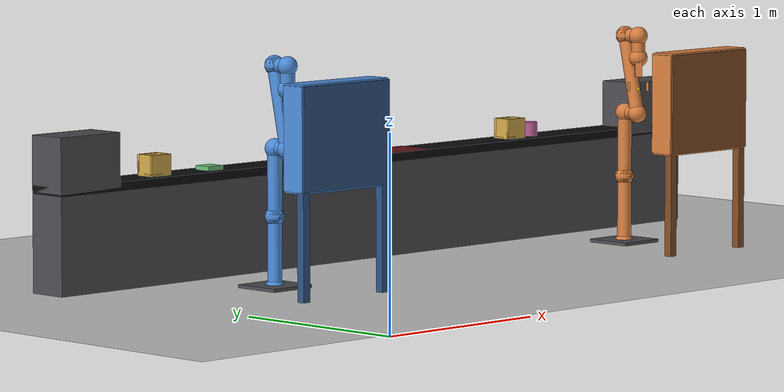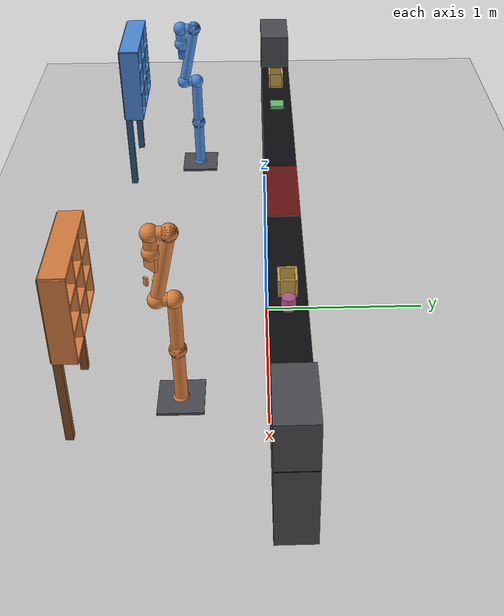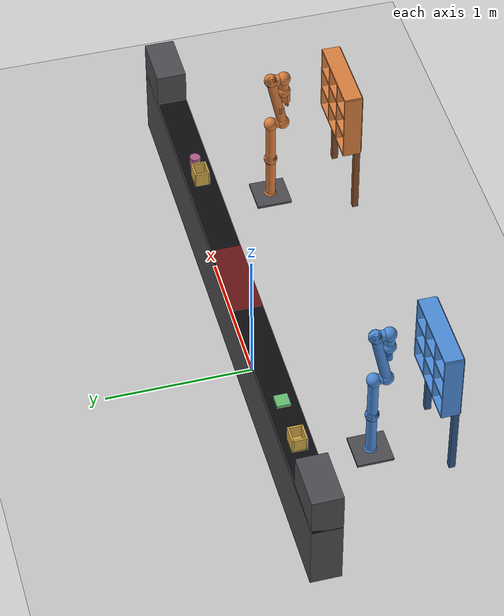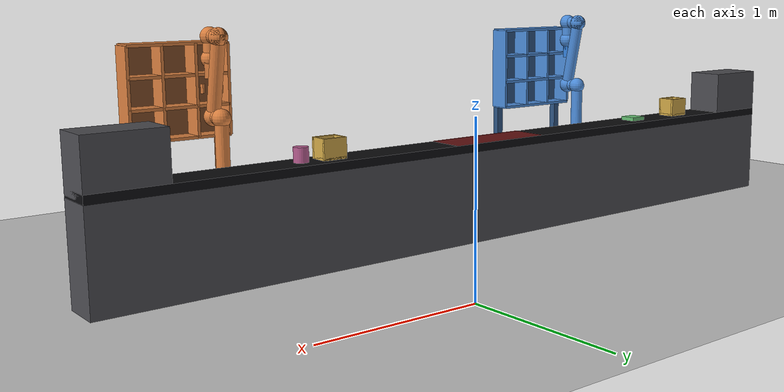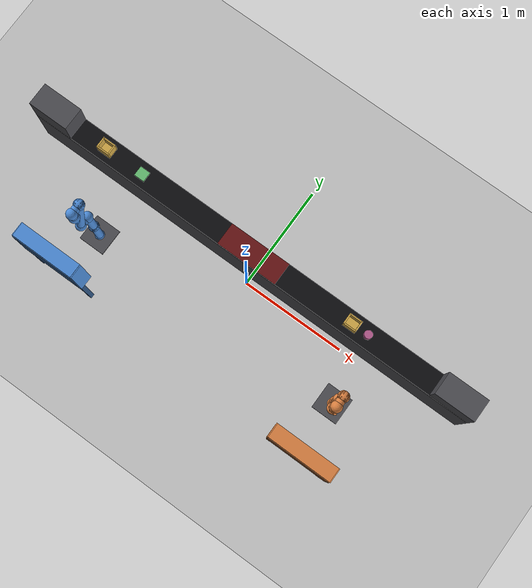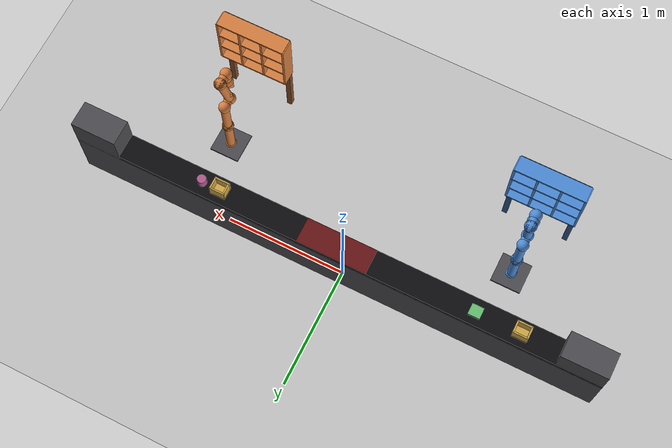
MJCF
<mujoco model="open_order_cell">
  <compiler angle="radian" meshdir="assets/"/>

  <option integrator="implicitfast"/>

  <size nkey="3"/>

  <default>
    <default class="a1_main">
      <default class="a1_panda">
        <material shininess="0.25"/>
        <joint range="-2.8973 2.8973" armature="0.1" damping="1"/>
        <site size="0.001 0.005 0.005" group="4" rgba="0.5 0.5 0.5 0.3"/>
        <general ctrlrange="-2.8973 2.8973" forcerange="-87 87" biastype="affine"/>
        <default class="a1_finger">
          <joint type="slide" range="0 0.04"/>
        </default>
        <default class="a1_panda/visual">
          <geom type="mesh" contype="0" conaffinity="0" group="2"/>
        </default>
        <default class="a1_panda/collision">
          <geom type="mesh" group="3"/>
        </default>
      </default>
    </default>
    <default class="a2_main">
      <default class="a2_panda">
        <material shininess="0.25"/>
        <joint range="-2.8973 2.8973" armature="0.1" damping="1"/>
        <site size="0.001 0.005 0.005" group="4" rgba="0.5 0.5 0.5 0.3"/>
        <general ctrlrange="-2.8973 2.8973" forcerange="-87 87" biastype="affine"/>
        <default class="a2_finger">
          <joint type="slide" range="0 0.04"/>
        </default>
        <default class="a2_panda/visual">
          <geom type="mesh" contype="0" conaffinity="0" group="2"/>
        </default>
        <default class="a2_panda/collision">
          <geom type="mesh" group="3"/>
        </default>
      </default>
    </default>
    <default class="a2g_main">
      <default class="a2g_2f85">
        <mesh scale="0.001 0.001 0.001"/>
        <general biastype="affine"/>
        <default class="a2g_driver">
          <joint solreflimit="0.005" solimplimit="0.95 0.99" range="0 0.8" armature="0.005" damping="0.1"/>
        </default>
        <default class="a2g_follower">
          <joint solreflimit="0.005" solimplimit="0.95 0.99" range="-0.872664 0.872664" armature="0.001"/>
        </default>
        <default class="a2g_spring_link">
          <joint springref="2.62" stiffness="0.05" range="-0.296706 0.8" armature="0.001" damping="0.00125"/>
        </default>
        <default class="a2g_coupler">
          <joint solreflimit="0.005" solimplimit="0.95 0.99" range="-1.57 0" armature="0.001"/>
        </default>
        <default class="a2g_visual">
          <geom type="mesh" contype="0" conaffinity="0" group="2"/>
        </default>
        <default class="a2g_collision">
          <geom type="mesh" group="3"/>
          <default class="a2g_pad_box1">
            <geom size="0.011 0.004 0.009375" type="box" priority="1" friction="0.7" solref="0.004" solimp="0.95 0.99" rgba="0.55 0.55 0.55 1"/>
          </default>
          <default class="a2g_pad_box2">
            <geom size="0.011 0.004 0.009375" type="box" priority="1" friction="0.6" solref="0.004" solimp="0.95 0.99" rgba="0.45 0.45 0.45 1"/>
          </default>
        </default>
      </default>
    </default>
  </default>

  <asset>
    <texture type="2d" colorspace="auto" name="grid" builtin="checker" rgb1="0.85 0.85 0.85" rgb2="0.7 0.7 0.7" width="300" height="300"/>
    <material name="grid" texture="grid" texrepeat="8 8" reflectance="0.1"/>
    <material name="belt" rgba="0.05 0.05 0.06 1"/>
    <material name="steel" rgba="0.3 0.3 0.32 1"/>
    <material name="a1_white" class="a1_panda"/>
    <material name="a1_off_white" class="a1_panda" rgba="0.901961 0.921569 0.929412 1"/>
    <material name="a1_dark_grey" class="a1_panda" rgba="0.25 0.25 0.25 1"/>
    <material name="a1_green" class="a1_panda" rgba="0 1 0 1"/>
    <material name="a1_light_blue" class="a1_panda" rgba="0.039216 0.541176 0.780392 1"/>
    <material name="a2_white" class="a2_panda"/>
    <material name="a2_off_white" class="a2_panda" rgba="0.901961 0.921569 0.929412 1"/>
    <material name="a2_dark_grey" class="a2_panda" rgba="0.25 0.25 0.25 1"/>
    <material name="a2_green" class="a2_panda" rgba="0 1 0 1"/>
    <material name="a2_light_blue" class="a2_panda" rgba="0.039216 0.541176 0.780392 1"/>
    <material name="a2g_metal" rgba="0.58 0.58 0.58 1"/>
    <material name="a2g_silicone" rgba="0.1882 0.1882 0.1882 1"/>
    <material name="a2g_gray" rgba="0.4627 0.4627 0.4627 1"/>
    <material name="a2g_black" rgba="0.149 0.149 0.149 1"/>
    <mesh name="a1_link0_c" file="link0.stl"/>
    <mesh name="a1_link1_c" file="link1.stl"/>
    <mesh name="a1_link2_c" file="link2.stl"/>
    <mesh name="a1_link3_c" file="link3.stl"/>
    <mesh name="a1_link4_c" file="link4.stl"/>
    <mesh name="a1_link5_c0" file="link5_collision_0.obj"/>
    <mesh name="a1_link5_c1" file="link5_collision_1.obj"/>
    <mesh name="a1_link5_c2" file="link5_collision_2.obj"/>
    <mesh name="a1_link6_c" file="link6.stl"/>
    <mesh name="a1_link7_c" file="link7.stl"/>
    <mesh name="a1_link0_0" file="link0_0.obj"/>
    <mesh name="a1_link0_1" file="link0_1.obj"/>
    <mesh name="a1_link0_2" file="link0_2.obj"/>
    <mesh name="a1_link0_3" file="link0_3.obj"/>
    <mesh name="a1_link0_4" file="link0_4.obj"/>
    <mesh name="a1_link0_5" file="link0_5.obj"/>
    <mesh name="a1_link0_7" file="link0_7.obj"/>
    <mesh name="a1_link0_8" file="link0_8.obj"/>
    <mesh name="a1_link0_9" file="link0_9.obj"/>
    <mesh name="a1_link0_10" file="link0_10.obj"/>
    <mesh name="a1_link0_11" file="link0_11.obj"/>
    <mesh name="a1_link1" file="link1.obj"/>
    <mesh name="a1_link2" file="link2.obj"/>
    <mesh name="a1_link3_0" file="link3_0.obj"/>
    <mesh name="a1_link3_1" file="link3_1.obj"/>
    <mesh name="a1_link3_2" file="link3_2.obj"/>
    <mesh name="a1_link3_3" file="link3_3.obj"/>
    <mesh name="a1_link4_0" file="link4_0.obj"/>
    <mesh name="a1_link4_1" file="link4_1.obj"/>
    <mesh name="a1_link4_2" file="link4_2.obj"/>
    <mesh name="a1_link4_3" file="link4_3.obj"/>
    <mesh name="a1_link5_0" file="link5_0.obj"/>
    <mesh name="a1_link5_1" file="link5_1.obj"/>
    <mesh name="a1_link5_2" file="link5_2.obj"/>
    <mesh name="a1_link6_0" file="link6_0.obj"/>
    <mesh name="a1_link6_1" file="link6_1.obj"/>
    <mesh name="a1_link6_2" file="link6_2.obj"/>
    <mesh name="a1_link6_3" file="link6_3.obj"/>
    <mesh name="a1_link6_4" file="link6_4.obj"/>
    <mesh name="a1_link6_5" file="link6_5.obj"/>
    <mesh name="a1_link6_6" file="link6_6.obj"/>
    <mesh name="a1_link6_7" file="link6_7.obj"/>
    <mesh name="a1_link6_8" file="link6_8.obj"/>
    <mesh name="a1_link6_9" file="link6_9.obj"/>
    <mesh name="a1_link6_10" file="link6_10.obj"/>
    <mesh name="a1_link6_11" file="link6_11.obj"/>
    <mesh name="a1_link6_12" file="link6_12.obj"/>
    <mesh name="a1_link6_13" file="link6_13.obj"/>
    <mesh name="a1_link6_14" file="link6_14.obj"/>
    <mesh name="a1_link6_15" file="link6_15.obj"/>
    <mesh name="a1_link6_16" file="link6_16.obj"/>
    <mesh name="a1_link7_0" file="link7_0.obj"/>
    <mesh name="a1_link7_1" file="link7_1.obj"/>
    <mesh name="a1_link7_2" file="link7_2.obj"/>
    <mesh name="a1_link7_3" file="link7_3.obj"/>
    <mesh name="a1_link7_4" file="link7_4.obj"/>
    <mesh name="a1_link7_5" file="link7_5.obj"/>
    <mesh name="a1_link7_6" file="link7_6.obj"/>
    <mesh name="a1_link7_7" file="link7_7.obj"/>
    <mesh name="a2_link0_c" file="link0.stl"/>
    <mesh name="a2_link1_c" file="link1.stl"/>
    <mesh name="a2_link2_c" file="link2.stl"/>
    <mesh name="a2_link3_c" file="link3.stl"/>
    <mesh name="a2_link4_c" file="link4.stl"/>
    <mesh name="a2_link5_c0" file="link5_collision_0.obj"/>
    <mesh name="a2_link5_c1" file="link5_collision_1.obj"/>
    <mesh name="a2_link5_c2" file="link5_collision_2.obj"/>
    <mesh name="a2_link6_c" file="link6.stl"/>
    <mesh name="a2_link7_c" file="link7.stl"/>
    <mesh name="a2_link0_0" file="link0_0.obj"/>
    <mesh name="a2_link0_1" file="link0_1.obj"/>
    <mesh name="a2_link0_2" file="link0_2.obj"/>
    <mesh name="a2_link0_3" file="link0_3.obj"/>
    <mesh name="a2_link0_4" file="link0_4.obj"/>
    <mesh name="a2_link0_5" file="link0_5.obj"/>
    <mesh name="a2_link0_7" file="link0_7.obj"/>
    <mesh name="a2_link0_8" file="link0_8.obj"/>
    <mesh name="a2_link0_9" file="link0_9.obj"/>
    <mesh name="a2_link0_10" file="link0_10.obj"/>
    <mesh name="a2_link0_11" file="link0_11.obj"/>
    <mesh name="a2_link1" file="link1.obj"/>
    <mesh name="a2_link2" file="link2.obj"/>
    <mesh name="a2_link3_0" file="link3_0.obj"/>
    <mesh name="a2_link3_1" file="link3_1.obj"/>
    <mesh name="a2_link3_2" file="link3_2.obj"/>
    <mesh name="a2_link3_3" file="link3_3.obj"/>
    <mesh name="a2_link4_0" file="link4_0.obj"/>
    <mesh name="a2_link4_1" file="link4_1.obj"/>
    <mesh name="a2_link4_2" file="link4_2.obj"/>
    <mesh name="a2_link4_3" file="link4_3.obj"/>
    <mesh name="a2_link5_0" file="link5_0.obj"/>
    <mesh name="a2_link5_1" file="link5_1.obj"/>
    <mesh name="a2_link5_2" file="link5_2.obj"/>
    <mesh name="a2_link6_0" file="link6_0.obj"/>
    <mesh name="a2_link6_1" file="link6_1.obj"/>
    <mesh name="a2_link6_2" file="link6_2.obj"/>
    <mesh name="a2_link6_3" file="link6_3.obj"/>
    <mesh name="a2_link6_4" file="link6_4.obj"/>
    <mesh name="a2_link6_5" file="link6_5.obj"/>
    <mesh name="a2_link6_6" file="link6_6.obj"/>
    <mesh name="a2_link6_7" file="link6_7.obj"/>
    <mesh name="a2_link6_8" file="link6_8.obj"/>
    <mesh name="a2_link6_9" file="link6_9.obj"/>
    <mesh name="a2_link6_10" file="link6_10.obj"/>
    <mesh name="a2_link6_11" file="link6_11.obj"/>
    <mesh name="a2_link6_12" file="link6_12.obj"/>
    <mesh name="a2_link6_13" file="link6_13.obj"/>
    <mesh name="a2_link6_14" file="link6_14.obj"/>
    <mesh name="a2_link6_15" file="link6_15.obj"/>
    <mesh name="a2_link6_16" file="link6_16.obj"/>
    <mesh name="a2_link7_0" file="link7_0.obj"/>
    <mesh name="a2_link7_1" file="link7_1.obj"/>
    <mesh name="a2_link7_2" file="link7_2.obj"/>
    <mesh name="a2_link7_3" file="link7_3.obj"/>
    <mesh name="a2_link7_4" file="link7_4.obj"/>
    <mesh name="a2_link7_5" file="link7_5.obj"/>
    <mesh name="a2_link7_6" file="link7_6.obj"/>
    <mesh name="a2_link7_7" file="link7_7.obj"/>
    <mesh name="a2g_base_mount" class="a2g_2f85" file="base_mount.stl"/>
    <mesh name="a2g_base" class="a2g_2f85" file="base.stl"/>
    <mesh name="a2g_driver" class="a2g_2f85" file="driver.stl"/>
    <mesh name="a2g_coupler" class="a2g_2f85" file="coupler.stl"/>
    <mesh name="a2g_follower" class="a2g_2f85" file="follower.stl"/>
    <mesh name="a2g_pad" class="a2g_2f85" file="pad.stl"/>
    <mesh name="a2g_silicone_pad" class="a2g_2f85" file="silicone_pad.stl"/>
    <mesh name="a2g_spring_link" class="a2g_2f85" file="spring_link.stl"/>
  </asset>

  <worldbody>
    <geom name="floor" size="4 4 0.1" pos="0 0 0.4" type="plane" material="grid"/>
    <geom name="base1" size="0.12 0.12 0.008" pos="-1.2 -0.45 0.408" type="box" material="steel"/>
    <geom name="base2" size="0.12 0.12 0.008" pos="1.2 -0.45 0.408" type="box" material="steel"/>
    <geom name="belt_base" size="2.11 0.1 0.23" pos="0 0.1 0.63" type="box" contype="0" conaffinity="0" material="steel"/>
    <geom name="belt" size="2.11 0.1 0.02" pos="0 0.1 0.88" type="box" material="belt"/>
    <geom name="belt_gap_band" size="0.28 0.1 0.001" pos="0 0.1 0.901" type="box" contype="0" conaffinity="0" rgba="0.8 0.15 0.15 0.5"/>
    <geom name="feeder" size="0.18 0.1 0.13" pos="-1.93 0.1 1" type="box" contype="0" conaffinity="0" material="steel"/>
    <geom name="collector" size="0.18 0.1 0.13" pos="1.93 0.1 1" type="box" contype="0" conaffinity="0" material="steel"/>
    <light name="key" pos="0 -1 2.5" dir="0 0.371391 -0.928477"/>
    <light name="a1_top" pos="-1.2 -0.45 2.4" dir="0 0 -1" mode="trackcom"/>
    <body name="a1_link0" childclass="a1_panda" pos="-1.2 -0.45 0.4" quat="0.707107 0 0 -0.707107">
      <inertial pos="-0.041018 -0.00014 0.049974" quat="0.00630474 0.751245 0.00741774 0.659952" mass="0.629769" diaginertia="0.00430465 0.00387984 0.00313051"/>
      <geom class="a1_panda/visual" group="3" rgba="0.5 0.5 0.5 0" mesh="a1_link0_0"/>
      <geom class="a1_panda/visual" group="3" rgba="0.5 0.5 0.5 0" mesh="a1_link0_1"/>
      <geom class="a1_panda/visual" group="3" rgba="0.5 0.5 0.5 0" mesh="a1_link0_2"/>
      <geom class="a1_panda/visual" group="3" rgba="0.5 0.5 0.5 0" mesh="a1_link0_3"/>
      <geom class="a1_panda/visual" group="3" rgba="0.5 0.5 0.5 0" mesh="a1_link0_4"/>
      <geom class="a1_panda/visual" group="3" rgba="0.5 0.5 0.5 0" mesh="a1_link0_5"/>
      <geom class="a1_panda/visual" group="3" rgba="0.5 0.5 0.5 0" mesh="a1_link0_7"/>
      <geom class="a1_panda/visual" group="3" rgba="0.5 0.5 0.5 0" mesh="a1_link0_8"/>
      <geom class="a1_panda/visual" group="3" rgba="0.5 0.5 0.5 0" mesh="a1_link0_9"/>
      <geom class="a1_panda/visual" group="3" rgba="0.5 0.5 0.5 0" mesh="a1_link0_10"/>
      <geom class="a1_panda/visual" group="3" rgba="0.5 0.5 0.5 0" mesh="a1_link0_11"/>
      <geom class="a1_panda/collision" mesh="a1_link0_c"/>
      <geom name="a1_stk_link0_j" size="0.046" contype="0" conaffinity="0" group="2" rgba="0.3 0.55 0.85 1"/>
      <geom name="a1_stk_link0_link1" size="0.034 0.1665" pos="0 0 0.1665" quat="0 1 0 0" type="capsule" contype="0" conaffinity="0" group="2" rgba="0.3 0.55 0.85 1"/>
      <body name="a1_link1" pos="0 0 0.333">
        <inertial pos="0.003875 0.002081 -0.04762" quat="0.711549 0.00634377 -0.0131124 0.702485" mass="4.97068" diaginertia="0.707137 0.703435 0.00852456"/>
        <joint name="a1_joint1" pos="0 0 0" axis="0 0 1"/>
        <geom class="a1_panda/visual" group="3" rgba="0.5 0.5 0.5 0" mesh="a1_link1"/>
        <geom class="a1_panda/collision" mesh="a1_link1_c"/>
        <geom name="a1_stk_link1_j" size="0.046" contype="0" conaffinity="0" group="2" rgba="0.3 0.55 0.85 1"/>
        <body name="a1_link2" quat="0.707107 -0.707107 0 0">
          <inertial pos="-0.003141 -0.02872 0.003495" quat="-0.168175 0.828366 -0.122878 0.520027" mass="0.646926" diaginertia="0.0310326 0.0283001 0.00273425"/>
          <joint name="a1_joint2" pos="0 0 0" axis="0 0 1" range="-1.7628 1.7628"/>
          <geom class="a1_panda/visual" group="3" rgba="0.5 0.5 0.5 0" mesh="a1_link2"/>
          <geom class="a1_panda/collision" mesh="a1_link2_c"/>
          <geom name="a1_stk_link2_j" size="0.046" contype="0" conaffinity="0" group="2" rgba="0.3 0.55 0.85 1"/>
          <geom name="a1_stk_link2_link3" size="0.034 0.158" pos="0 -0.158 0" quat="0.707107 -0.707107 0 0" type="capsule" contype="0" conaffinity="0" group="2" rgba="0.3 0.55 0.85 1"/>
          <body name="a1_link3" pos="0 -0.316 0" quat="0.707107 0.707107 0 0">
            <inertial pos="0.027518 0.039252 -0.066502" quat="0.662769 -0.00678331 0.252053 0.705096" mass="3.2286" diaginertia="0.0415014 0.0414793 0.00124635"/>
            <joint name="a1_joint3" pos="0 0 0" axis="0 0 1"/>
            <geom class="a1_panda/visual" group="3" rgba="0.5 0.5 0.5 0" mesh="a1_link3_0"/>
            <geom class="a1_panda/visual" group="3" rgba="0.5 0.5 0.5 0" mesh="a1_link3_1"/>
            <geom class="a1_panda/visual" group="3" rgba="0.5 0.5 0.5 0" mesh="a1_link3_2"/>
            <geom class="a1_panda/visual" group="3" rgba="0.5 0.5 0.5 0" mesh="a1_link3_3"/>
            <geom class="a1_panda/collision" mesh="a1_link3_c"/>
            <geom name="a1_stk_link3_j" size="0.046" contype="0" conaffinity="0" group="2" rgba="0.3 0.55 0.85 1"/>
            <geom name="a1_stk_link3_link4" size="0.034 0.04125" pos="0.04125 0 0" quat="0.707107 0 -0.707107 0" type="capsule" contype="0" conaffinity="0" group="2" rgba="0.3 0.55 0.85 1"/>
            <body name="a1_link4" pos="0.0825 0 0" quat="0.707107 0.707107 0 0">
              <inertial pos="-0.05317 0.104419 0.027454" quat="0.65058 0.529822 -0.0962034 0.535518" mass="3.5879" diaginertia="0.0349596 0.0281483 0.0106201"/>
              <joint name="a1_joint4" pos="0 0 0" axis="0 0 1" range="-3.0718 -0.0698"/>
              <geom class="a1_panda/visual" group="3" rgba="0.5 0.5 0.5 0" mesh="a1_link4_0"/>
              <geom class="a1_panda/visual" group="3" rgba="0.5 0.5 0.5 0" mesh="a1_link4_1"/>
              <geom class="a1_panda/visual" group="3" rgba="0.5 0.5 0.5 0" mesh="a1_link4_2"/>
              <geom class="a1_panda/visual" group="3" rgba="0.5 0.5 0.5 0" mesh="a1_link4_3"/>
              <geom class="a1_panda/collision" mesh="a1_link4_c"/>
              <geom name="a1_stk_link4_j" size="0.046" contype="0" conaffinity="0" group="2" rgba="0.3 0.55 0.85 1"/>
              <geom name="a1_stk_link4_link5" size="0.034 0.196381" pos="-0.04125 0.192 0" quat="0.707107 0.691332 0.148528 0" type="capsule" contype="0" conaffinity="0" group="2" rgba="0.3 0.55 0.85 1"/>
              <body name="a1_link5" pos="-0.0825 0.384 0" quat="0.707107 -0.707107 0 0">
                <inertial pos="-0.011953 0.041065 -0.038437" quat="0.987313 -0.0121954 0.0719187 -0.141037" mass="1.22595" diaginertia="0.0367625 0.0288531 0.00803437"/>
                <joint name="a1_joint5" pos="0 0 0" axis="0 0 1"/>
                <geom class="a1_panda/visual" group="3" rgba="0.5 0.5 0.5 0" mesh="a1_link5_0"/>
                <geom class="a1_panda/visual" group="3" rgba="0.5 0.5 0.5 0" mesh="a1_link5_1"/>
                <geom class="a1_panda/visual" group="3" rgba="0.5 0.5 0.5 0" mesh="a1_link5_2"/>
                <geom class="a1_panda/collision" mesh="a1_link5_c0"/>
                <geom class="a1_panda/collision" mesh="a1_link5_c1"/>
                <geom class="a1_panda/collision" mesh="a1_link5_c2"/>
                <geom name="a1_stk_link5_j" size="0.046" contype="0" conaffinity="0" group="2" rgba="0.3 0.55 0.85 1"/>
                <body name="a1_link6" quat="0.707107 0.707107 0 0">
                  <inertial pos="0.060149 -0.014117 -0.010517" quat="0.101075 0.59332 0.0287227 0.798079" mass="1.66656" diaginertia="0.00584276 0.00431037 0.00159787"/>
                  <joint name="a1_joint6" pos="0 0 0" axis="0 0 1" range="-0.0175 3.7525"/>
                  <geom class="a1_panda/visual" group="3" rgba="0.5 0.5 0.5 0" mesh="a1_link6_0"/>
                  <geom class="a1_panda/visual" group="3" rgba="0.5 0.5 0.5 0" mesh="a1_link6_1"/>
                  <geom class="a1_panda/visual" group="3" rgba="0.5 0.5 0.5 0" mesh="a1_link6_2"/>
                  <geom class="a1_panda/visual" group="3" rgba="0.5 0.5 0.5 0" mesh="a1_link6_3"/>
                  <geom class="a1_panda/visual" group="3" rgba="0.5 0.5 0.5 0" mesh="a1_link6_4"/>
                  <geom class="a1_panda/visual" group="3" rgba="0.5 0.5 0.5 0" mesh="a1_link6_5"/>
                  <geom class="a1_panda/visual" group="3" rgba="0.5 0.5 0.5 0" mesh="a1_link6_6"/>
                  <geom class="a1_panda/visual" group="3" rgba="0.5 0.5 0.5 0" mesh="a1_link6_7"/>
                  <geom class="a1_panda/visual" group="3" rgba="0.5 0.5 0.5 0" mesh="a1_link6_8"/>
                  <geom class="a1_panda/visual" group="3" rgba="0.5 0.5 0.5 0" mesh="a1_link6_9"/>
                  <geom class="a1_panda/visual" group="3" rgba="0.5 0.5 0.5 0" mesh="a1_link6_10"/>
                  <geom class="a1_panda/visual" group="3" rgba="0.5 0.5 0.5 0" mesh="a1_link6_11"/>
                  <geom class="a1_panda/visual" group="3" rgba="0.5 0.5 0.5 0" mesh="a1_link6_12"/>
                  <geom class="a1_panda/visual" group="3" rgba="0.5 0.5 0.5 0" mesh="a1_link6_13"/>
                  <geom class="a1_panda/visual" group="3" rgba="0.5 0.5 0.5 0" mesh="a1_link6_14"/>
                  <geom class="a1_panda/visual" group="3" rgba="0.5 0.5 0.5 0" mesh="a1_link6_15"/>
                  <geom class="a1_panda/visual" group="3" rgba="0.5 0.5 0.5 0" mesh="a1_link6_16"/>
                  <geom class="a1_panda/collision" mesh="a1_link6_c"/>
                  <geom name="a1_stk_link6_j" size="0.046" contype="0" conaffinity="0" group="2" rgba="0.3 0.55 0.85 1"/>
                  <geom name="a1_stk_link6_link7" size="0.034 0.044" pos="0.044 0 0" quat="0.707107 0 -0.707107 0" type="capsule" contype="0" conaffinity="0" group="2" rgba="0.3 0.55 0.85 1"/>
                  <body name="a1_link7" pos="0.088 0 0" quat="0.707107 0.707107 0 0">
                    <inertial pos="0.010517 -0.004252 0.061597" quat="0.992939 -0.0762041 0.0733595 -0.0537067" mass="0.735522" diaginertia="0.0127345 0.0101055 0.00451803"/>
                    <joint name="a1_joint7" pos="0 0 0" axis="0 0 1"/>
                    <geom class="a1_panda/visual" group="3" rgba="0.5 0.5 0.5 0" mesh="a1_link7_0"/>
                    <geom class="a1_panda/visual" group="3" rgba="0.5 0.5 0.5 0" mesh="a1_link7_1"/>
                    <geom class="a1_panda/visual" group="3" rgba="0.5 0.5 0.5 0" mesh="a1_link7_2"/>
                    <geom class="a1_panda/visual" group="3" rgba="0.5 0.5 0.5 0" mesh="a1_link7_3"/>
                    <geom class="a1_panda/visual" group="3" rgba="0.5 0.5 0.5 0" mesh="a1_link7_4"/>
                    <geom class="a1_panda/visual" group="3" rgba="0.5 0.5 0.5 0" mesh="a1_link7_5"/>
                    <geom class="a1_panda/visual" group="3" rgba="0.5 0.5 0.5 0" mesh="a1_link7_6"/>
                    <geom class="a1_panda/visual" group="3" rgba="0.5 0.5 0.5 0" mesh="a1_link7_7"/>
                    <geom class="a1_panda/collision" mesh="a1_link7_c"/>
                    <geom name="a1_stk_link7_j" size="0.046" contype="0" conaffinity="0" group="2" rgba="0.3 0.55 0.85 1"/>
                    <geom name="a1_stk_link7_attachment" size="0.034 0.0535" pos="0 0 0.0535" quat="0 1 0 0" type="capsule" contype="0" conaffinity="0" group="2" rgba="0.3 0.55 0.85 1"/>
                    <body name="a1_attachment" pos="0 0 0.107" quat="0.382683 0 0 0.92388">
                      <geom name="a1_stk_attachment_j" size="0.046" contype="0" conaffinity="0" group="2" rgba="0.3 0.55 0.85 1"/>
                      <site name="a1_attachment_site" pos="0 0 0"/>
                      <body name="a1_suction">
                        <geom name="a1_cup" size="0.025 0.03" pos="0 0 0.03" type="cylinder" mass="0.05" rgba="0.2 0.5 0.85 1"/>
                        <geom name="a1_cup_vis" size="0.025 0.0525" pos="0 0 0.0525" type="cylinder" contype="0" conaffinity="0" mass="0" rgba="0.2 0.5 0.85 1"/>
                        <site name="a1_tcp" pos="0 0 0.06" size="0.008" rgba="1 1 0 1"/>
                      </body>
                    </body>
                  </body>
                </body>
              </body>
            </body>
          </body>
        </body>
      </body>
    </body>
    <light name="a2_top" pos="1.2 -0.45 2.4" dir="0 0 -1" mode="trackcom"/>
    <body name="a2_link0" childclass="a2_panda" pos="1.2 -0.45 0.4" quat="0.707107 0 0 -0.707107">
      <inertial pos="-0.041018 -0.00014 0.049974" quat="0.00630474 0.751245 0.00741774 0.659952" mass="0.629769" diaginertia="0.00430465 0.00387984 0.00313051"/>
      <geom class="a2_panda/visual" group="3" rgba="0.5 0.5 0.5 0" mesh="a2_link0_0"/>
      <geom class="a2_panda/visual" group="3" rgba="0.5 0.5 0.5 0" mesh="a2_link0_1"/>
      <geom class="a2_panda/visual" group="3" rgba="0.5 0.5 0.5 0" mesh="a2_link0_2"/>
      <geom class="a2_panda/visual" group="3" rgba="0.5 0.5 0.5 0" mesh="a2_link0_3"/>
      <geom class="a2_panda/visual" group="3" rgba="0.5 0.5 0.5 0" mesh="a2_link0_4"/>
      <geom class="a2_panda/visual" group="3" rgba="0.5 0.5 0.5 0" mesh="a2_link0_5"/>
      <geom class="a2_panda/visual" group="3" rgba="0.5 0.5 0.5 0" mesh="a2_link0_7"/>
      <geom class="a2_panda/visual" group="3" rgba="0.5 0.5 0.5 0" mesh="a2_link0_8"/>
      <geom class="a2_panda/visual" group="3" rgba="0.5 0.5 0.5 0" mesh="a2_link0_9"/>
      <geom class="a2_panda/visual" group="3" rgba="0.5 0.5 0.5 0" mesh="a2_link0_10"/>
      <geom class="a2_panda/visual" group="3" rgba="0.5 0.5 0.5 0" mesh="a2_link0_11"/>
      <geom class="a2_panda/collision" mesh="a2_link0_c"/>
      <geom name="a2_stk_link0_j" size="0.046" contype="0" conaffinity="0" group="2" rgba="0.85 0.5 0.25 1"/>
      <geom name="a2_stk_link0_link1" size="0.034 0.1665" pos="0 0 0.1665" quat="0 1 0 0" type="capsule" contype="0" conaffinity="0" group="2" rgba="0.85 0.5 0.25 1"/>
      <body name="a2_link1" pos="0 0 0.333">
        <inertial pos="0.003875 0.002081 -0.04762" quat="0.711549 0.00634377 -0.0131124 0.702485" mass="4.97068" diaginertia="0.707137 0.703435 0.00852456"/>
        <joint name="a2_joint1" pos="0 0 0" axis="0 0 1"/>
        <geom class="a2_panda/visual" group="3" rgba="0.5 0.5 0.5 0" mesh="a2_link1"/>
        <geom class="a2_panda/collision" mesh="a2_link1_c"/>
        <geom name="a2_stk_link1_j" size="0.046" contype="0" conaffinity="0" group="2" rgba="0.85 0.5 0.25 1"/>
        <body name="a2_link2" quat="0.707107 -0.707107 0 0">
          <inertial pos="-0.003141 -0.02872 0.003495" quat="-0.168175 0.828366 -0.122878 0.520027" mass="0.646926" diaginertia="0.0310326 0.0283001 0.00273425"/>
          <joint name="a2_joint2" pos="0 0 0" axis="0 0 1" range="-1.7628 1.7628"/>
          <geom class="a2_panda/visual" group="3" rgba="0.5 0.5 0.5 0" mesh="a2_link2"/>
          <geom class="a2_panda/collision" mesh="a2_link2_c"/>
          <geom name="a2_stk_link2_j" size="0.046" contype="0" conaffinity="0" group="2" rgba="0.85 0.5 0.25 1"/>
          <geom name="a2_stk_link2_link3" size="0.034 0.158" pos="0 -0.158 0" quat="0.707107 -0.707107 0 0" type="capsule" contype="0" conaffinity="0" group="2" rgba="0.85 0.5 0.25 1"/>
          <body name="a2_link3" pos="0 -0.316 0" quat="0.707107 0.707107 0 0">
            <inertial pos="0.027518 0.039252 -0.066502" quat="0.662769 -0.00678331 0.252053 0.705096" mass="3.2286" diaginertia="0.0415014 0.0414793 0.00124635"/>
            <joint name="a2_joint3" pos="0 0 0" axis="0 0 1"/>
            <geom class="a2_panda/visual" group="3" rgba="0.5 0.5 0.5 0" mesh="a2_link3_0"/>
            <geom class="a2_panda/visual" group="3" rgba="0.5 0.5 0.5 0" mesh="a2_link3_1"/>
            <geom class="a2_panda/visual" group="3" rgba="0.5 0.5 0.5 0" mesh="a2_link3_2"/>
            <geom class="a2_panda/visual" group="3" rgba="0.5 0.5 0.5 0" mesh="a2_link3_3"/>
            <geom class="a2_panda/collision" mesh="a2_link3_c"/>
            <geom name="a2_stk_link3_j" size="0.046" contype="0" conaffinity="0" group="2" rgba="0.85 0.5 0.25 1"/>
            <geom name="a2_stk_link3_link4" size="0.034 0.04125" pos="0.04125 0 0" quat="0.707107 0 -0.707107 0" type="capsule" contype="0" conaffinity="0" group="2" rgba="0.85 0.5 0.25 1"/>
            <body name="a2_link4" pos="0.0825 0 0" quat="0.707107 0.707107 0 0">
              <inertial pos="-0.05317 0.104419 0.027454" quat="0.65058 0.529822 -0.0962034 0.535518" mass="3.5879" diaginertia="0.0349596 0.0281483 0.0106201"/>
              <joint name="a2_joint4" pos="0 0 0" axis="0 0 1" range="-3.0718 -0.0698"/>
              <geom class="a2_panda/visual" group="3" rgba="0.5 0.5 0.5 0" mesh="a2_link4_0"/>
              <geom class="a2_panda/visual" group="3" rgba="0.5 0.5 0.5 0" mesh="a2_link4_1"/>
              <geom class="a2_panda/visual" group="3" rgba="0.5 0.5 0.5 0" mesh="a2_link4_2"/>
              <geom class="a2_panda/visual" group="3" rgba="0.5 0.5 0.5 0" mesh="a2_link4_3"/>
              <geom class="a2_panda/collision" mesh="a2_link4_c"/>
              <geom name="a2_stk_link4_j" size="0.046" contype="0" conaffinity="0" group="2" rgba="0.85 0.5 0.25 1"/>
              <geom name="a2_stk_link4_link5" size="0.034 0.196381" pos="-0.04125 0.192 0" quat="0.707107 0.691332 0.148528 0" type="capsule" contype="0" conaffinity="0" group="2" rgba="0.85 0.5 0.25 1"/>
              <body name="a2_link5" pos="-0.0825 0.384 0" quat="0.707107 -0.707107 0 0">
                <inertial pos="-0.011953 0.041065 -0.038437" quat="0.987313 -0.0121954 0.0719187 -0.141037" mass="1.22595" diaginertia="0.0367625 0.0288531 0.00803437"/>
                <joint name="a2_joint5" pos="0 0 0" axis="0 0 1"/>
                <geom class="a2_panda/visual" group="3" rgba="0.5 0.5 0.5 0" mesh="a2_link5_0"/>
                <geom class="a2_panda/visual" group="3" rgba="0.5 0.5 0.5 0" mesh="a2_link5_1"/>
                <geom class="a2_panda/visual" group="3" rgba="0.5 0.5 0.5 0" mesh="a2_link5_2"/>
                <geom class="a2_panda/collision" mesh="a2_link5_c0"/>
                <geom class="a2_panda/collision" mesh="a2_link5_c1"/>
                <geom class="a2_panda/collision" mesh="a2_link5_c2"/>
                <geom name="a2_stk_link5_j" size="0.046" contype="0" conaffinity="0" group="2" rgba="0.85 0.5 0.25 1"/>
                <body name="a2_link6" quat="0.707107 0.707107 0 0">
                  <inertial pos="0.060149 -0.014117 -0.010517" quat="0.101075 0.59332 0.0287227 0.798079" mass="1.66656" diaginertia="0.00584276 0.00431037 0.00159787"/>
                  <joint name="a2_joint6" pos="0 0 0" axis="0 0 1" range="-0.0175 3.7525"/>
                  <geom class="a2_panda/visual" group="3" rgba="0.5 0.5 0.5 0" mesh="a2_link6_0"/>
                  <geom class="a2_panda/visual" group="3" rgba="0.5 0.5 0.5 0" mesh="a2_link6_1"/>
                  <geom class="a2_panda/visual" group="3" rgba="0.5 0.5 0.5 0" mesh="a2_link6_2"/>
                  <geom class="a2_panda/visual" group="3" rgba="0.5 0.5 0.5 0" mesh="a2_link6_3"/>
                  <geom class="a2_panda/visual" group="3" rgba="0.5 0.5 0.5 0" mesh="a2_link6_4"/>
                  <geom class="a2_panda/visual" group="3" rgba="0.5 0.5 0.5 0" mesh="a2_link6_5"/>
                  <geom class="a2_panda/visual" group="3" rgba="0.5 0.5 0.5 0" mesh="a2_link6_6"/>
                  <geom class="a2_panda/visual" group="3" rgba="0.5 0.5 0.5 0" mesh="a2_link6_7"/>
                  <geom class="a2_panda/visual" group="3" rgba="0.5 0.5 0.5 0" mesh="a2_link6_8"/>
                  <geom class="a2_panda/visual" group="3" rgba="0.5 0.5 0.5 0" mesh="a2_link6_9"/>
                  <geom class="a2_panda/visual" group="3" rgba="0.5 0.5 0.5 0" mesh="a2_link6_10"/>
                  <geom class="a2_panda/visual" group="3" rgba="0.5 0.5 0.5 0" mesh="a2_link6_11"/>
                  <geom class="a2_panda/visual" group="3" rgba="0.5 0.5 0.5 0" mesh="a2_link6_12"/>
                  <geom class="a2_panda/visual" group="3" rgba="0.5 0.5 0.5 0" mesh="a2_link6_13"/>
                  <geom class="a2_panda/visual" group="3" rgba="0.5 0.5 0.5 0" mesh="a2_link6_14"/>
                  <geom class="a2_panda/visual" group="3" rgba="0.5 0.5 0.5 0" mesh="a2_link6_15"/>
                  <geom class="a2_panda/visual" group="3" rgba="0.5 0.5 0.5 0" mesh="a2_link6_16"/>
                  <geom class="a2_panda/collision" mesh="a2_link6_c"/>
                  <geom name="a2_stk_link6_j" size="0.046" contype="0" conaffinity="0" group="2" rgba="0.85 0.5 0.25 1"/>
                  <geom name="a2_stk_link6_link7" size="0.034 0.044" pos="0.044 0 0" quat="0.707107 0 -0.707107 0" type="capsule" contype="0" conaffinity="0" group="2" rgba="0.85 0.5 0.25 1"/>
                  <body name="a2_link7" pos="0.088 0 0" quat="0.707107 0.707107 0 0">
                    <inertial pos="0.010517 -0.004252 0.061597" quat="0.992939 -0.0762041 0.0733595 -0.0537067" mass="0.735522" diaginertia="0.0127345 0.0101055 0.00451803"/>
                    <joint name="a2_joint7" pos="0 0 0" axis="0 0 1"/>
                    <geom class="a2_panda/visual" group="3" rgba="0.5 0.5 0.5 0" mesh="a2_link7_0"/>
                    <geom class="a2_panda/visual" group="3" rgba="0.5 0.5 0.5 0" mesh="a2_link7_1"/>
                    <geom class="a2_panda/visual" group="3" rgba="0.5 0.5 0.5 0" mesh="a2_link7_2"/>
                    <geom class="a2_panda/visual" group="3" rgba="0.5 0.5 0.5 0" mesh="a2_link7_3"/>
                    <geom class="a2_panda/visual" group="3" rgba="0.5 0.5 0.5 0" mesh="a2_link7_4"/>
                    <geom class="a2_panda/visual" group="3" rgba="0.5 0.5 0.5 0" mesh="a2_link7_5"/>
                    <geom class="a2_panda/visual" group="3" rgba="0.5 0.5 0.5 0" mesh="a2_link7_6"/>
                    <geom class="a2_panda/visual" group="3" rgba="0.5 0.5 0.5 0" mesh="a2_link7_7"/>
                    <geom class="a2_panda/collision" mesh="a2_link7_c"/>
                    <geom name="a2_stk_link7_j" size="0.046" contype="0" conaffinity="0" group="2" rgba="0.85 0.5 0.25 1"/>
                    <geom name="a2_stk_link7_attachment" size="0.034 0.0535" pos="0 0 0.0535" quat="0 1 0 0" type="capsule" contype="0" conaffinity="0" group="2" rgba="0.85 0.5 0.25 1"/>
                    <body name="a2_attachment" pos="0 0 0.107" quat="0.382683 0 0 0.92388">
                      <geom name="a2_stk_attachment_j" size="0.046" contype="0" conaffinity="0" group="2" rgba="0.85 0.5 0.25 1"/>
                      <site name="a2_attachment_site" pos="0 0 0"/>
                      <body name="a2g_base_mount" childclass="a2g_2f85" pos="0 0 0.007">
                        <geom class="a2g_visual" group="3" rgba="0.5 0.5 0.5 0" mesh="a2g_base_mount"/>
                        <geom class="a2g_collision" rgba="0.5 0.5 0.5 0" mesh="a2g_base_mount"/>
                        <body name="a2g_base" pos="0 0 0.0038" quat="0.707107 0 0 -0.707107">
                          <inertial pos="0 -2.70394e-05 0.0354675" quat="0.999999 -0.00152849 0 0" mass="0.777441" diaginertia="0.000260285 0.000225381 0.000152708"/>
                          <geom class="a2g_visual" group="3" rgba="0.5 0.5 0.5 0" mesh="a2g_base"/>
                          <geom class="a2g_collision" rgba="0.5 0.5 0.5 0" mesh="a2g_base"/>
                          <geom name="stk_a2g_base" size="0.04 0.018 0.04" pos="0 0 0.04" type="box" contype="0" conaffinity="0" group="2" rgba="0.85 0.5 0.25 1"/>
                          <site name="a2g_pinch" pos="0 0 0.145" group="5" rgba="0.9 0.9 0.9 1"/>
                          <site name="a2_tcp" pos="0 0 0.145" size="0.008" rgba="1 1 0 1"/>
                          <body name="a2g_right_driver" pos="0 0.0306011 0.054904">
                            <inertial pos="2.96931e-12 0.0177547 0.00107314" quat="0.681301 0.732003 0 0" mass="0.00899563" diaginertia="1.72352e-06 1.60906e-06 3.22006e-07"/>
                            <joint name="a2g_right_driver_joint" class="a2g_driver" pos="0 0 0" axis="1 0 0"/>
                            <geom class="a2g_visual" group="3" rgba="0.5 0.5 0.5 0" mesh="a2g_driver"/>
                            <geom class="a2g_collision" rgba="0.5 0.5 0.5 0" mesh="a2g_driver"/>
                            <body name="a2g_right_coupler" pos="0 0.0315 -0.0041">
                              <inertial pos="0 0.00301209 0.0232175" quat="0.705636 -0.0455904 0.0455904 0.705636" mass="0.0140974" diaginertia="4.16206e-06 3.52216e-06 8.88131e-07"/>
                              <joint name="a2g_right_coupler_joint" class="a2g_coupler" pos="0 0 0" axis="1 0 0"/>
                              <geom class="a2g_visual" group="3" rgba="0.5 0.5 0.5 0" mesh="a2g_coupler"/>
                              <geom class="a2g_collision" rgba="0.5 0.5 0.5 0" mesh="a2g_coupler"/>
                            </body>
                          </body>
                          <body name="a2g_right_spring_link" pos="0 0.0132 0.0609">
                            <inertial pos="-8.65005e-09 0.0181624 0.0212658" quat="0.663403 -0.244737 0.244737 0.663403" mass="0.0221642" diaginertia="8.96853e-06 6.71733e-06 2.63931e-06"/>
                            <joint name="a2g_right_spring_link_joint" class="a2g_spring_link" pos="0 0 0" axis="1 0 0" springref="2.62"/>
                            <geom class="a2g_visual" group="3" rgba="0.5 0.5 0.5 0" mesh="a2g_spring_link"/>
                            <geom class="a2g_collision" rgba="0.5 0.5 0.5 0" mesh="a2g_spring_link"/>
                            <body name="a2g_right_follower" pos="0 0.055 0.0375">
                              <inertial pos="0 -0.011046 0.0124786" quat="0.986437 0.164143 0 0" mass="0.0125222" diaginertia="2.67415e-06 2.4559e-06 6.02031e-07"/>
                              <joint name="a2g_right_follower_joint" class="a2g_follower" pos="0 -0.018 0.0065" axis="1 0 0"/>
                              <geom class="a2g_visual" group="3" rgba="0.5 0.5 0.5 0" mesh="a2g_follower"/>
                              <geom class="a2g_collision" rgba="0.5 0.5 0.5 0" mesh="a2g_follower"/>
                              <body name="a2g_right_pad" pos="0 -0.0189 0.01352">
                                <inertial pos="0 -0.0025 0.0185" quat="0.707107 0 0 0.707107" mass="0.0035" diaginertia="4.73958e-07 3.64583e-07 1.23958e-07"/>
                                <geom name="a2g_right_pad1" class="a2g_pad_box1" pos="0 -0.0026 0.028125" mass="0"/>
                                <geom name="a2g_right_pad2" class="a2g_pad_box2" pos="0 -0.0026 0.009375" mass="0"/>
                                <geom class="a2g_visual" group="3" rgba="0.5 0.5 0.5 0" mesh="a2g_pad"/>
                                <body name="a2g_right_silicone_pad">
                                  <geom class="a2g_visual" group="3" rgba="0.5 0.5 0.5 0" mesh="a2g_silicone_pad"/>
                                  <geom name="stk_a2g_right_silicone_pad" size="0.012 0.006 0.022" pos="0 -0.004 0.02" type="box" contype="0" conaffinity="0" group="2" rgba="0.85 0.5 0.25 1"/>
                                </body>
                              </body>
                            </body>
                          </body>
                          <body name="a2g_left_driver" pos="0 -0.0306011 0.054904" quat="0 0 0 1">
                            <inertial pos="0 0.0177547 0.00107314" quat="0.681301 0.732003 0 0" mass="0.00899563" diaginertia="1.72352e-06 1.60906e-06 3.22006e-07"/>
                            <joint name="a2g_left_driver_joint" class="a2g_driver" pos="0 0 0" axis="1 0 0"/>
                            <geom class="a2g_visual" group="3" rgba="0.5 0.5 0.5 0" mesh="a2g_driver"/>
                            <geom class="a2g_collision" rgba="0.5 0.5 0.5 0" mesh="a2g_driver"/>
                            <body name="a2g_left_coupler" pos="0 0.0315 -0.0041">
                              <inertial pos="0 0.00301209 0.0232175" quat="0.705636 -0.0455904 0.0455904 0.705636" mass="0.0140974" diaginertia="4.16206e-06 3.52216e-06 8.88131e-07"/>
                              <joint name="a2g_left_coupler_joint" class="a2g_coupler" pos="0 0 0" axis="1 0 0"/>
                              <geom class="a2g_visual" group="3" rgba="0.5 0.5 0.5 0" mesh="a2g_coupler"/>
                              <geom class="a2g_collision" rgba="0.5 0.5 0.5 0" mesh="a2g_coupler"/>
                            </body>
                          </body>
                          <body name="a2g_left_spring_link" pos="0 -0.0132 0.0609" quat="0 0 0 1">
                            <inertial pos="-8.65005e-09 0.0181624 0.0212658" quat="0.663403 -0.244737 0.244737 0.663403" mass="0.0221642" diaginertia="8.96853e-06 6.71733e-06 2.63931e-06"/>
                            <joint name="a2g_left_spring_link_joint" class="a2g_spring_link" pos="0 0 0" axis="1 0 0" springref="2.62"/>
                            <geom class="a2g_visual" group="3" rgba="0.5 0.5 0.5 0" mesh="a2g_spring_link"/>
                            <geom class="a2g_collision" rgba="0.5 0.5 0.5 0" mesh="a2g_spring_link"/>
                            <body name="a2g_left_follower" pos="0 0.055 0.0375">
                              <inertial pos="0 -0.011046 0.0124786" quat="0.986437 0.164143 0 0" mass="0.0125222" diaginertia="2.67415e-06 2.4559e-06 6.02031e-07"/>
                              <joint name="a2g_left_follower_joint" class="a2g_follower" pos="0 -0.018 0.0065" axis="1 0 0"/>
                              <geom class="a2g_visual" group="3" rgba="0.5 0.5 0.5 0" mesh="a2g_follower"/>
                              <geom class="a2g_collision" rgba="0.5 0.5 0.5 0" mesh="a2g_follower"/>
                              <body name="a2g_left_pad" pos="0 -0.0189 0.01352">
                                <inertial pos="0 -0.0025 0.0185" quat="0.707107 0 0 0.707107" mass="0.0035" diaginertia="4.73958e-07 3.64583e-07 1.23958e-07"/>
                                <geom name="a2g_left_pad1" class="a2g_pad_box1" pos="0 -0.0026 0.028125" mass="0"/>
                                <geom name="a2g_left_pad2" class="a2g_pad_box2" pos="0 -0.0026 0.009375" mass="0"/>
                                <geom class="a2g_visual" group="3" rgba="0.5 0.5 0.5 0" mesh="a2g_pad"/>
                                <body name="a2g_left_silicone_pad">
                                  <geom class="a2g_visual" group="3" rgba="0.5 0.5 0.5 0" mesh="a2g_silicone_pad"/>
                                  <geom name="stk_a2g_left_silicone_pad" size="0.012 0.006 0.022" pos="0 -0.004 0.02" type="box" contype="0" conaffinity="0" group="2" rgba="0.85 0.5 0.25 1"/>
                                </body>
                              </body>
                            </body>
                          </body>
                        </body>
                      </body>
                    </body>
                  </body>
                </body>
              </body>
            </body>
          </body>
        </body>
      </body>
    </body>
    <body name="shelf_L">
      <geom name="shelf_L_back" size="0.27 0.008 0.24" pos="-1.2 -0.92 1.14" type="box" rgba="0.18 0.33 0.51 1"/>
      <geom name="shelf_L_h0" size="0.27 0.06 0.008" pos="-1.2 -0.86 0.9" type="box" rgba="0.3 0.55 0.85 1"/>
      <geom name="shelf_L_h1" size="0.27 0.06 0.008" pos="-1.2 -0.86 1.06" type="box" rgba="0.3 0.55 0.85 1"/>
      <geom name="shelf_L_h2" size="0.27 0.06 0.008" pos="-1.2 -0.86 1.22" type="box" rgba="0.3 0.55 0.85 1"/>
      <geom name="shelf_L_h3" size="0.27 0.06 0.008" pos="-1.2 -0.86 1.38" type="box" rgba="0.3 0.55 0.85 1"/>
      <geom name="shelf_L_v0" size="0.008 0.06 0.24" pos="-1.47 -0.86 1.14" type="box" rgba="0.3 0.55 0.85 1"/>
      <geom name="shelf_L_v1" size="0.008 0.06 0.24" pos="-1.29 -0.86 1.14" type="box" rgba="0.3 0.55 0.85 1"/>
      <geom name="shelf_L_v2" size="0.008 0.06 0.24" pos="-1.11 -0.86 1.14" type="box" rgba="0.3 0.55 0.85 1"/>
      <geom name="shelf_L_v3" size="0.008 0.06 0.24" pos="-0.93 -0.86 1.14" type="box" rgba="0.3 0.55 0.85 1"/>
      <geom name="shelf_L_post0" size="0.02 0.02 0.25" pos="-1.45 -0.9 0.65" type="box" rgba="0.18 0.33 0.51 1"/>
      <geom name="shelf_L_post1" size="0.02 0.02 0.25" pos="-0.95 -0.9 0.65" type="box" rgba="0.18 0.33 0.51 1"/>
    </body>
    <body name="shelf_R">
      <geom name="shelf_R_back" size="0.27 0.008 0.24" pos="1.2 -1 1.14" type="box" rgba="0.51 0.3 0.15 1"/>
      <geom name="shelf_R_h0" size="0.27 0.06 0.008" pos="1.2 -0.94 0.9" type="box" rgba="0.85 0.5 0.25 1"/>
      <geom name="shelf_R_h1" size="0.27 0.06 0.008" pos="1.2 -0.94 1.06" type="box" rgba="0.85 0.5 0.25 1"/>
      <geom name="shelf_R_h2" size="0.27 0.06 0.008" pos="1.2 -0.94 1.22" type="box" rgba="0.85 0.5 0.25 1"/>
      <geom name="shelf_R_h3" size="0.27 0.06 0.008" pos="1.2 -0.94 1.38" type="box" rgba="0.85 0.5 0.25 1"/>
      <geom name="shelf_R_v0" size="0.008 0.06 0.24" pos="0.93 -0.94 1.14" type="box" rgba="0.85 0.5 0.25 1"/>
      <geom name="shelf_R_v1" size="0.008 0.06 0.24" pos="1.11 -0.94 1.14" type="box" rgba="0.85 0.5 0.25 1"/>
      <geom name="shelf_R_v2" size="0.008 0.06 0.24" pos="1.29 -0.94 1.14" type="box" rgba="0.85 0.5 0.25 1"/>
      <geom name="shelf_R_v3" size="0.008 0.06 0.24" pos="1.47 -0.94 1.14" type="box" rgba="0.85 0.5 0.25 1"/>
      <geom name="shelf_R_post0" size="0.02 0.02 0.25" pos="0.95 -0.98 0.65" type="box" rgba="0.51 0.3 0.15 1"/>
      <geom name="shelf_R_post1" size="0.02 0.02 0.25" pos="1.45 -0.98 0.65" type="box" rgba="0.51 0.3 0.15 1"/>
    </body>
    <body name="box1" pos="-1.45 0.1 0.95">
      <joint type="free"/>
      <geom name="box1_floor" size="0.06 0.05 0.006" pos="0 0 -0.044" type="box" mass="0.06" rgba="0.82 0.66 0.28 1"/>
      <geom name="box1_wpy" size="0.06 0.006 0.05" pos="0 0.044 0" type="box" mass="0.03" rgba="0.82 0.66 0.28 1"/>
      <geom name="box1_wmy" size="0.06 0.006 0.05" pos="0 -0.044 0" type="box" mass="0.03" rgba="0.82 0.66 0.28 1"/>
      <geom name="box1_wpx" size="0.006 0.044 0.05" pos="0.054 0 0" type="box" mass="0.03" rgba="0.82 0.66 0.28 1"/>
      <geom name="box1_wmx" size="0.006 0.044 0.05" pos="-0.054 0 0" type="box" mass="0.03" rgba="0.82 0.66 0.28 1"/>
    </body>
    <body name="sheet1" pos="-1.1 0.1 0.91">
      <joint type="free"/>
      <geom size="0.046 0.044 0.01" type="box" mass="0.08" rgba="0.4 0.75 0.45 1"/>
    </body>
    <body name="box2" pos="0.95 0.1 0.95">
      <joint type="free"/>
      <geom name="box2_floor" size="0.06 0.05 0.006" pos="0 0 -0.044" type="box" mass="0.06" rgba="0.82 0.66 0.28 1"/>
      <geom name="box2_wpy" size="0.06 0.006 0.05" pos="0 0.044 0" type="box" mass="0.03" rgba="0.82 0.66 0.28 1"/>
      <geom name="box2_wmy" size="0.06 0.006 0.05" pos="0 -0.044 0" type="box" mass="0.03" rgba="0.82 0.66 0.28 1"/>
      <geom name="box2_wpx" size="0.006 0.044 0.05" pos="0.054 0 0" type="box" mass="0.03" rgba="0.82 0.66 0.28 1"/>
      <geom name="box2_wmx" size="0.006 0.044 0.05" pos="-0.054 0 0" type="box" mass="0.03" rgba="0.82 0.66 0.28 1"/>
    </body>
    <body name="tube1" pos="1.1 0.1 0.935">
      <joint type="free"/>
      <geom size="0.035 0.035" type="cylinder" mass="0.09" rgba="0.7 0.35 0.55 1"/>
    </body>
  </worldbody>

  <contact>
    <exclude body1="a1_link0" body2="a1_link1"/>
    <exclude body1="a2_link0" body2="a2_link1"/>
    <exclude body1="a2g_base" body2="a2g_right_driver"/>
    <exclude body1="a2g_base" body2="a2g_right_spring_link"/>
    <exclude body1="a2g_base" body2="a2g_left_driver"/>
    <exclude body1="a2g_base" body2="a2g_left_spring_link"/>
    <exclude body1="a2g_right_coupler" body2="a2g_right_follower"/>
    <exclude body1="a2g_left_coupler" body2="a2g_left_follower"/>
  </contact>

  <equality>
    <connect body1="a2g_right_follower" body2="a2g_right_coupler" anchor="0 0 0" solref="0.005" solimp="0.95 0.99"/>
    <connect body1="a2g_left_follower" body2="a2g_left_coupler" anchor="0 0 0" solref="0.005" solimp="0.95 0.99"/>
    <joint joint1="a2g_right_driver_joint" joint2="a2g_left_driver_joint" polycoef="0 1 0 0 0" solref="0.005" solimp="0.95 0.99"/>
    <weld name="grasp_a1_suction_sheet1" body1="a1_suction" body2="sheet1" anchor="0 1 0" relpose="0 0 0 0 0 0 0" torquescale="1" active="false"/>
    <weld name="grasp_a1_suction_box1" body1="a1_suction" body2="box1" anchor="0 1 0" relpose="0 0 0 0 0 0 0" torquescale="1" active="false"/>
    <weld name="grasp_a2g_base_tube1" body1="a2g_base" body2="tube1" anchor="0 1 0" relpose="0 0 0 0 0 0 0" torquescale="1" active="false"/>
    <weld name="grasp_a2g_base_box1" body1="a2g_base" body2="box1" anchor="0 1 0" relpose="0 0 0 0 0 0 0" torquescale="1" active="false"/>
  </equality>

  <tendon>
    <fixed name="a2g_split">
      <joint joint="a2g_right_driver_joint" coef="0.5"/>
      <joint joint="a2g_left_driver_joint" coef="0.5"/>
    </fixed>
  </tendon>

  <actuator>
    <general name="a1_actuator1" class="a1_panda" joint="a1_joint1" gainprm="4500" biasprm="0 -4500 -450"/>
    <general name="a1_actuator2" class="a1_panda" joint="a1_joint2" ctrlrange="-1.7628 1.7628" gainprm="4500" biasprm="0 -4500 -450"/>
    <general name="a1_actuator3" class="a1_panda" joint="a1_joint3" gainprm="3500" biasprm="0 -3500 -350"/>
    <general name="a1_actuator4" class="a1_panda" joint="a1_joint4" ctrlrange="-3.0718 -0.0698" gainprm="3500" biasprm="0 -3500 -350"/>
    <general name="a1_actuator5" class="a1_panda" joint="a1_joint5" forcerange="-12 12" gainprm="2000" biasprm="0 -2000 -200"/>
    <general name="a1_actuator6" class="a1_panda" joint="a1_joint6" ctrlrange="-0.0175 3.7525" forcerange="-12 12" gainprm="2000" biasprm="0 -2000 -200"/>
    <general name="a1_actuator7" class="a1_panda" joint="a1_joint7" forcerange="-12 12" gainprm="2000" biasprm="0 -2000 -200"/>
    <general name="a2_actuator1" class="a2_panda" joint="a2_joint1" gainprm="4500" biasprm="0 -4500 -450"/>
    <general name="a2_actuator2" class="a2_panda" joint="a2_joint2" ctrlrange="-1.7628 1.7628" gainprm="4500" biasprm="0 -4500 -450"/>
    <general name="a2_actuator3" class="a2_panda" joint="a2_joint3" gainprm="3500" biasprm="0 -3500 -350"/>
    <general name="a2_actuator4" class="a2_panda" joint="a2_joint4" ctrlrange="-3.0718 -0.0698" gainprm="3500" biasprm="0 -3500 -350"/>
    <general name="a2_actuator5" class="a2_panda" joint="a2_joint5" forcerange="-12 12" gainprm="2000" biasprm="0 -2000 -200"/>
    <general name="a2_actuator6" class="a2_panda" joint="a2_joint6" ctrlrange="-0.0175 3.7525" forcerange="-12 12" gainprm="2000" biasprm="0 -2000 -200"/>
    <general name="a2_actuator7" class="a2_panda" joint="a2_joint7" forcerange="-12 12" gainprm="2000" biasprm="0 -2000 -200"/>
    <general name="a2g_fingers_actuator" class="a2g_2f85" tendon="a2g_split" ctrlrange="0 255" forcerange="-5 5" gainprm="0.313725" biasprm="0 -100 -10"/>
  </actuator>

  <keyframe>
    <key name="a1_home" qpos="0 0 0 -1.57079 0 1.57079 -0.7853 0 0 0 0 0 0 0 0 0 0 0 0 0 0 0 -1.45 0.1 0.95 1 0 0 0 -1.1 0.1 0.91 1 0 0 0 0.95 0.1 0.95 1 0 0 0 1.1 0.1 0.935 1 0 0 0" ctrl="0 0 0 -1.57079 0 1.57079 -0.7853 0 0 0 0 0 0 0 0"/>
    <key name="a2_home" qpos="0 0 0 0 0 0 0 0 0 0 -1.57079 0 1.57079 -0.7853 0 0 0 0 0 0 0 0 -1.45 0.1 0.95 1 0 0 0 -1.1 0.1 0.91 1 0 0 0 0.95 0.1 0.95 1 0 0 0 1.1 0.1 0.935 1 0 0 0" ctrl="0 0 0 0 0 0 0 0 0 0 -1.57079 0 1.57079 -0.7853 0"/>
    <key name="home" qpos="0 0 0 -1.57079 0 1.57079 -0.7853 0 0 0 -1.57079 0 1.57079 -0.7853 0 0 0 0 0 0 0 0 -1.45 0.1 0.95 1 0 0 0 -1.1 0.1 0.91 1 0 0 0 0.95 0.1 0.95 1 0 0 0 1.1 0.1 0.935 1 0 0 0" ctrl="0 0 0 -1.57079 0 1.57079 -0.7853 0 0 0 -1.57079 0 1.57079 -0.7853 0"/>
  </keyframe>
</mujoco>
